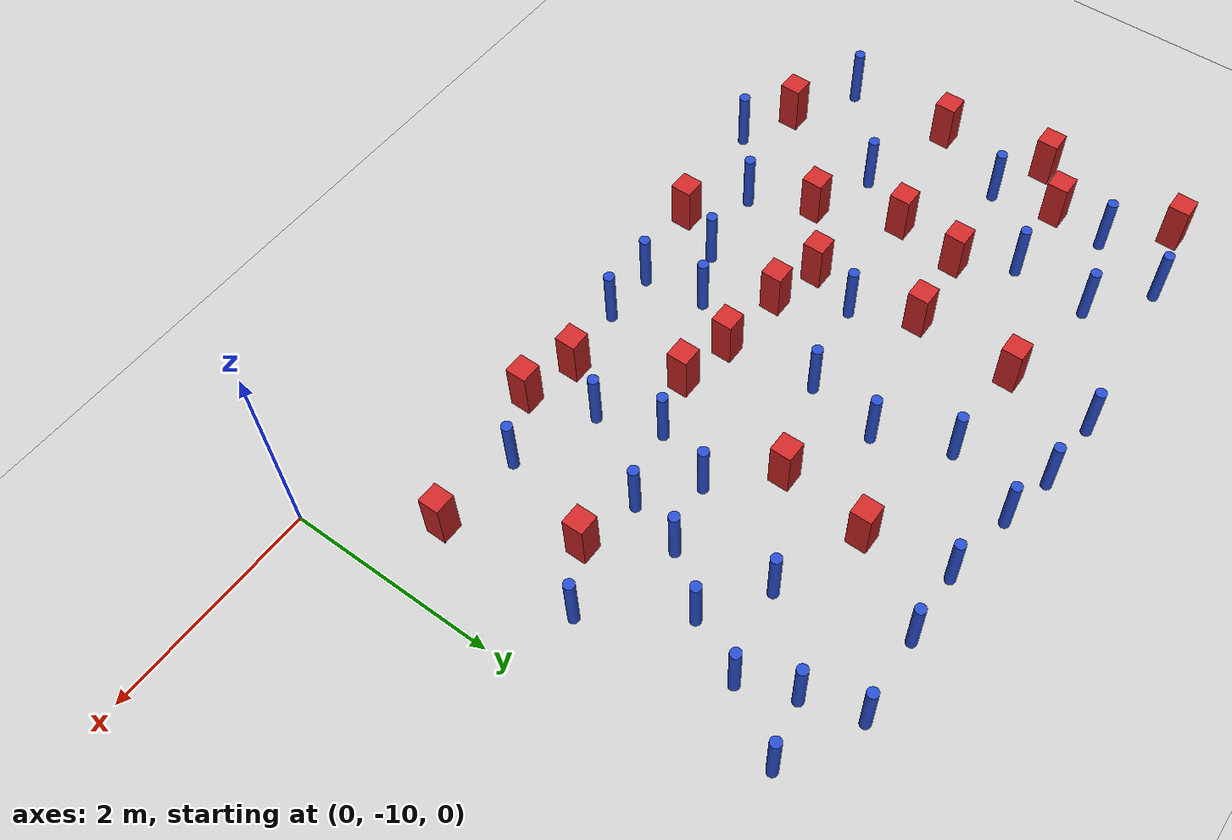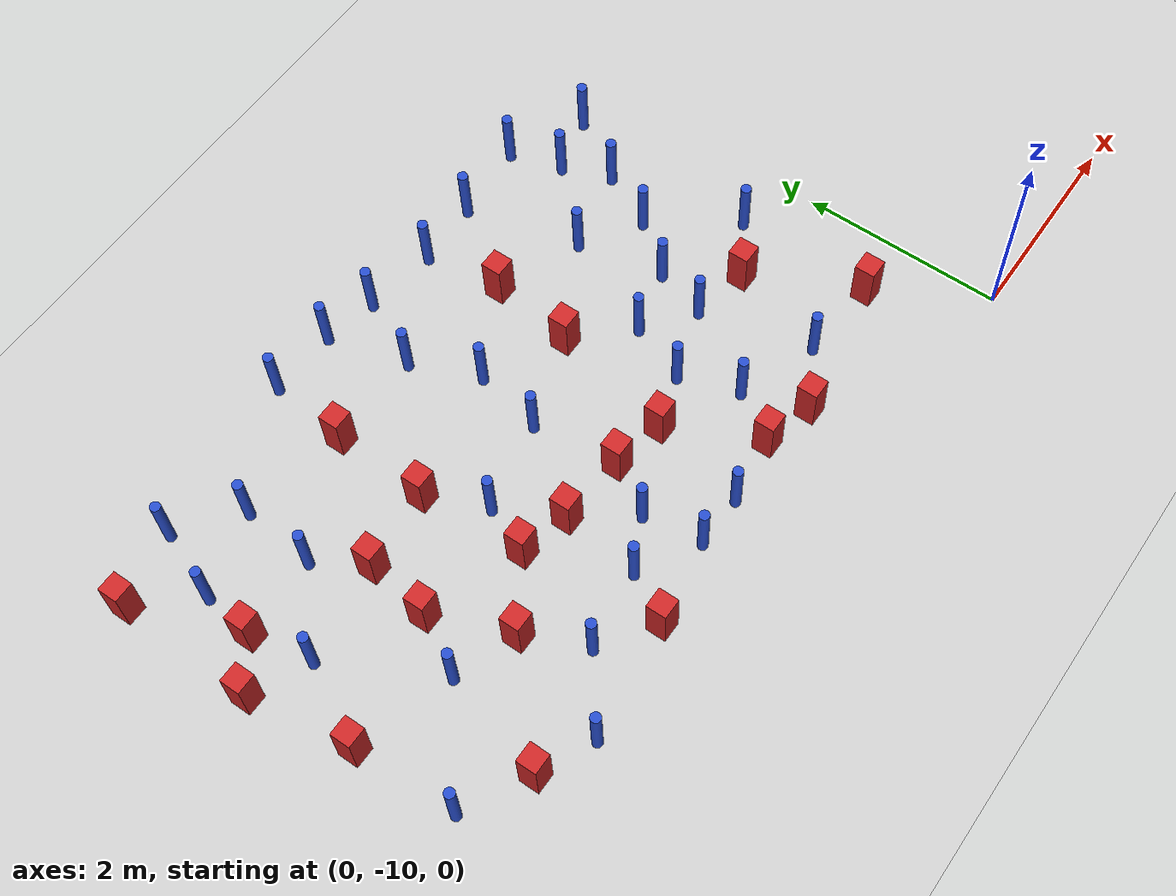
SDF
<sdf version="1.6">
 <world name="default">
  <model name="ground_plane">
   <static>1</static>
   <link name="link">
    <collision name="collision">
     <geometry><plane><normal>0 0 1</normal><size>100 100</size></plane></geometry>
     <surface><friction><ode><mu>100</mu><mu2>50</mu2></ode></friction></surface>
    </collision>
    <visual name="visual">
     <cast_shadows>0</cast_shadows>
     <geometry><plane><normal>0 0 1</normal><size>100 100</size></plane></geometry>
     <material>
      <ambient>1.0 1.0 1.0 1.0</ambient>
      <diffuse>0.8 0.8 0.8 1.0</diffuse>
      <specular>0.01 0.01 0.01 1.000000</specular>
     </material>
    </visual>
   </link>
  </model>
  <model name="square_post_obstacle12">
   <static>true</static>
   <pose>-6.54234163152 -6.48318330368 8.22691968438e-08 7.2212513382e-06 -7.54495500217e-07 2.29674213826e-05</pose>
   <link name="link">
    <pose>0 0 0.25 0 -0 0</pose>
    <inertial>
     <mass>100</mass>
     <inertia>
      <ixx>0.166667</ixx>
      <ixy>0</ixy>
      <ixz>0</ixz>
      <iyy>0.166667</iyy>
      <iyz>0</iyz>
      <izz>0.166667</izz>
     </inertia>
    </inertial>
    <collision name="collision"><geometry><box><size>.2 .2 .5</size></box></geometry></collision>
    <visual name="visual">
     <geometry><box><size>.2 .2 .5</size></box></geometry>
     <material>
      <script><name>Gazebo/Red</name><uri>file://media/materials/scripts/gazebo.material</uri></script>
     </material>
    </visual>
   </link>
  </model>
  <model name="pole_obstacle11">
   <static>true</static>
   <pose>-1.71149280971 -6.44326498525 2.88873142074e-08 -9.90536689852e-09 4.60219948989e-07 -1.2096599496e-07</pose>
   <link name="link">
    <pose>0 0 0.3 0 -0 0</pose>
    <inertial>
     <mass>1</mass>
     <inertia><ixx>0.145833</ixx><ixy>0</ixy><ixz>0</ixz><iyy>0.145833</iyy><iyz>0</iyz><izz>0.125</izz></inertia>
    </inertial>
    <collision name="collision">
     <geometry><cylinder><radius>0.05</radius><length>.6</length></cylinder></geometry>
    </collision>
    <visual name="visual">
     <geometry><cylinder><radius>0.05</radius><length>.6</length></cylinder></geometry>
     <material>
      <script><name>Gazebo/Blue</name><uri>file://media/materials/scripts/gazebo.material</uri></script>
     </material>
    </visual>
   </link>
  </model>
  <model name="square_post_obstacle21">
   <static>true</static>
   <pose>-2.50041429818 -9.08207789205 8.22691968438e-08 7.22125133819e-06 -7.54495500217e-07 2.29674213826e-05</pose>
   <link name="link">
    <pose>0 0 0.25 0 -0 0</pose>
    <inertial>
     <mass>100</mass>
     <inertia>
      <ixx>0.166667</ixx>
      <ixy>0</ixy>
      <ixz>0</ixz>
      <iyy>0.166667</iyy>
      <iyz>0</iyz>
      <izz>0.166667</izz>
     </inertia>
    </inertial>
    <collision name="collision"><geometry><box><size>.2 .2 .5</size></box></geometry></collision>
    <visual name="visual">
     <geometry><box><size>.2 .2 .5</size></box></geometry>
     <material>
      <script><name>Gazebo/Red</name><uri>file://media/materials/scripts/gazebo.material</uri></script>
     </material>
    </visual>
   </link>
  </model>
  <model name="pole_obstacle17">
   <static>true</static>
   <pose>-4.43029769642 -7.44711746223 2.88873142074e-08 -9.90536690842e-09 4.60219948965e-07 -1.20965994976e-07</pose>
   <link name="link">
    <pose>0 0 0.3 0 -0 0</pose>
    <inertial>
     <mass>1</mass>
     <inertia><ixx>0.145833</ixx><ixy>0</ixy><ixz>0</ixz><iyy>0.145833</iyy><iyz>0</iyz><izz>0.125</izz></inertia>
    </inertial>
    <collision name="collision">
     <geometry><cylinder><radius>0.05</radius><length>.6</length></cylinder></geometry>
    </collision>
    <visual name="visual">
     <geometry><cylinder><radius>0.05</radius><length>.6</length></cylinder></geometry>
     <material>
      <script><name>Gazebo/Blue</name><uri>file://media/materials/scripts/gazebo.material</uri></script>
     </material>
    </visual>
   </link>
  </model>
  <model name="pole_obstacle24">
   <static>true</static>
   <pose>-6.78461669548 -8.85125705796 2.88873142074e-08 -9.9053668967e-09 4.60219948993e-07 -1.20965994957e-07</pose>
   <link name="link">
    <pose>0 0 0.3 0 -0 0</pose>
    <inertial>
     <mass>1</mass>
     <inertia><ixx>0.145833</ixx><ixy>0</ixy><ixz>0</ixz><iyy>0.145833</iyy><iyz>0</iyz><izz>0.125</izz></inertia>
    </inertial>
    <collision name="collision">
     <geometry><cylinder><radius>0.05</radius><length>.6</length></cylinder></geometry>
    </collision>
    <visual name="visual">
     <geometry><cylinder><radius>0.05</radius><length>.6</length></cylinder></geometry>
     <material>
      <script><name>Gazebo/Blue</name><uri>file://media/materials/scripts/gazebo.material</uri></script>
     </material>
    </visual>
   </link>
  </model>
  <model name="pole_obstacle27">
   <static>true</static>
   <pose>-2.20261003958 -8.60993973966 2.88873142074e-08 -9.90536692318e-09 4.6021994893e-07 -1.20965994988e-07</pose>
   <link name="link">
    <pose>0 0 0.3 0 -0 0</pose>
    <inertial>
     <mass>1</mass>
     <inertia><ixx>0.145833</ixx><ixy>0</ixy><ixz>0</ixz><iyy>0.145833</iyy><iyz>0</iyz><izz>0.125</izz></inertia>
    </inertial>
    <collision name="collision">
     <geometry><cylinder><radius>0.05</radius><length>.6</length></cylinder></geometry>
    </collision>
    <visual name="visual">
     <geometry><cylinder><radius>0.05</radius><length>.6</length></cylinder></geometry>
     <material>
      <script><name>Gazebo/Blue</name><uri>file://media/materials/scripts/gazebo.material</uri></script>
     </material>
    </visual>
   </link>
  </model>
  <model name="square_post_obstacle32">
   <static>true</static>
   <pose>-2.92771861356 -8.20823176281 8.22691968438e-08 7.22125133819e-06 -7.54495500217e-07 2.29674213826e-05</pose>
   <link name="link">
    <pose>0 0 0.25 0 -0 0</pose>
    <inertial>
     <mass>100</mass>
     <inertia>
      <ixx>0.166667</ixx>
      <ixy>0</ixy>
      <ixz>0</ixz>
      <iyy>0.166667</iyy>
      <iyz>0</iyz>
      <izz>0.166667</izz>
     </inertia>
    </inertial>
    <collision name="collision"><geometry><box><size>.2 .2 .5</size></box></geometry></collision>
    <visual name="visual">
     <geometry><box><size>.2 .2 .5</size></box></geometry>
     <material>
      <script><name>Gazebo/Red</name><uri>file://media/materials/scripts/gazebo.material</uri></script>
     </material>
    </visual>
   </link>
  </model>
  <model name="pole_obstacle31">
   <static>true</static>
   <pose>-3.54929513582 -7.25771155566 2.88873142074e-08 -9.90536689859e-09 4.60219948989e-07 -1.20965994961e-07</pose>
   <link name="link">
    <pose>0 0 0.3 0 -0 0</pose>
    <inertial>
     <mass>1</mass>
     <inertia><ixx>0.145833</ixx><ixy>0</ixy><ixz>0</ixz><iyy>0.145833</iyy><iyz>0</iyz><izz>0.125</izz></inertia>
    </inertial>
    <collision name="collision">
     <geometry><cylinder><radius>0.05</radius><length>.6</length></cylinder></geometry>
    </collision>
    <visual name="visual">
     <geometry><cylinder><radius>0.05</radius><length>.6</length></cylinder></geometry>
     <material>
      <script><name>Gazebo/Blue</name><uri>file://media/materials/scripts/gazebo.material</uri></script>
     </material>
    </visual>
   </link>
  </model>
  <model name="pole_obstacle32">
   <static>true</static>
   <pose>-2.64332495579 -5.35607502169 2.88873142074e-08 -9.90536689859e-09 4.60219948989e-07 -1.20965994961e-07</pose>
   <link name="link">
    <pose>0 0 0.3 0 -0 0</pose>
    <inertial>
     <mass>1</mass>
     <inertia><ixx>0.145833</ixx><ixy>0</ixy><ixz>0</ixz><iyy>0.145833</iyy><iyz>0</iyz><izz>0.125</izz></inertia>
    </inertial>
    <collision name="collision">
     <geometry><cylinder><radius>0.05</radius><length>.6</length></cylinder></geometry>
    </collision>
    <visual name="visual">
     <geometry><cylinder><radius>0.05</radius><length>.6</length></cylinder></geometry>
     <material>
      <script><name>Gazebo/Blue</name><uri>file://media/materials/scripts/gazebo.material</uri></script>
     </material>
    </visual>
   </link>
  </model>
  <model name="pole_obstacle35">
   <static>true</static>
   <pose>-2.16761448942 -7.45671834868 2.88873142074e-08 -9.90536689859e-09 4.60219948989e-07 -1.20965994961e-07</pose>
   <link name="link">
    <pose>0 0 0.3 0 -0 0</pose>
    <inertial>
     <mass>1</mass>
     <inertia><ixx>0.145833</ixx><ixy>0</ixy><ixz>0</ixz><iyy>0.145833</iyy><iyz>0</iyz><izz>0.125</izz></inertia>
    </inertial>
    <collision name="collision">
     <geometry><cylinder><radius>0.05</radius><length>.6</length></cylinder></geometry>
    </collision>
    <visual name="visual">
     <geometry><cylinder><radius>0.05</radius><length>.6</length></cylinder></geometry>
     <material>
      <script><name>Gazebo/Blue</name><uri>file://media/materials/scripts/gazebo.material</uri></script>
     </material>
    </visual>
   </link>
  </model>
  <model name="square_post_obstacle39">
   <static>true</static>
   <pose>-6.82402341208 -7.84306021628 8.22691968438e-08 7.22125133819e-06 -7.54495500217e-07 2.29674213826e-05</pose>
   <link name="link">
    <pose>0 0 0.25 0 -0 0</pose>
    <inertial>
     <mass>100</mass>
     <inertia>
      <ixx>0.166667</ixx>
      <ixy>0</ixy>
      <ixz>0</ixz>
      <iyy>0.166667</iyy>
      <iyz>0</iyz>
      <izz>0.166667</izz>
     </inertia>
    </inertial>
    <collision name="collision"><geometry><box><size>.2 .2 .5</size></box></geometry></collision>
    <visual name="visual">
     <geometry><box><size>.2 .2 .5</size></box></geometry>
     <material>
      <script><name>Gazebo/Red</name><uri>file://media/materials/scripts/gazebo.material</uri></script>
     </material>
    </visual>
   </link>
  </model>
  <model name="pole_obstacle39">
   <static>true</static>
   <pose>-4.54872128641 -5.11156442108 2.88873142074e-08 -9.90536690842e-09 4.60219948965e-07 -1.20965994976e-07</pose>
   <link name="link">
    <pose>0 0 0.3 0 -0 0</pose>
    <inertial>
     <mass>1</mass>
     <inertia><ixx>0.145833</ixx><ixy>0</ixy><ixz>0</ixz><iyy>0.145833</iyy><iyz>0</iyz><izz>0.125</izz></inertia>
    </inertial>
    <collision name="collision">
     <geometry><cylinder><radius>0.05</radius><length>.6</length></cylinder></geometry>
    </collision>
    <visual name="visual">
     <geometry><cylinder><radius>0.05</radius><length>.6</length></cylinder></geometry>
     <material>
      <script><name>Gazebo/Blue</name><uri>file://media/materials/scripts/gazebo.material</uri></script>
     </material>
    </visual>
   </link>
  </model>
  <model name="square_post_obstacle40">
   <static>true</static>
   <pose>-4.48494366289 -9.29438645703 8.22691968438e-08 7.22125133819e-06 -7.54495500217e-07 2.29674213826e-05</pose>
   <link name="link">
    <pose>0 0 0.25 0 -0 0</pose>
    <inertial>
     <mass>100</mass>
     <inertia>
      <ixx>0.166667</ixx>
      <ixy>0</ixy>
      <ixz>0</ixz>
      <iyy>0.166667</iyy>
      <iyz>0</iyz>
      <izz>0.166667</izz>
     </inertia>
    </inertial>
    <collision name="collision"><geometry><box><size>.2 .2 .5</size></box></geometry></collision>
    <visual name="visual">
     <geometry><box><size>.2 .2 .5</size></box></geometry>
     <material>
      <script><name>Gazebo/Red</name><uri>file://media/materials/scripts/gazebo.material</uri></script>
     </material>
    </visual>
   </link>
  </model>
  <model name="pole_obstacle45">
   <static>true</static>
   <pose>-6.21672664421 -5.28379203276 2.88873142074e-08 -9.90536690842e-09 4.60219948965e-07 -1.20965994976e-07</pose>
   <link name="link">
    <pose>0 0 0.3 0 -0 0</pose>
    <inertial>
     <mass>1</mass>
     <inertia><ixx>0.145833</ixx><ixy>0</ixy><ixz>0</ixz><iyy>0.145833</iyy><iyz>0</iyz><izz>0.125</izz></inertia>
    </inertial>
    <collision name="collision">
     <geometry><cylinder><radius>0.05</radius><length>.6</length></cylinder></geometry>
    </collision>
    <visual name="visual">
     <geometry><cylinder><radius>0.05</radius><length>.6</length></cylinder></geometry>
     <material>
      <script><name>Gazebo/Blue</name><uri>file://media/materials/scripts/gazebo.material</uri></script>
     </material>
    </visual>
   </link>
  </model>
  <model name="pole_obstacle46">
   <static>true</static>
   <pose>-3.87610327983 -5.14061435724 2.88873142074e-08 -9.90536689859e-09 4.60219948989e-07 -1.20965994961e-07</pose>
   <link name="link">
    <pose>0 0 0.3 0 -0 0</pose>
    <inertial>
     <mass>1</mass>
     <inertia><ixx>0.145833</ixx><ixy>0</ixy><ixz>0</ixz><iyy>0.145833</iyy><iyz>0</iyz><izz>0.125</izz></inertia>
    </inertial>
    <collision name="collision">
     <geometry><cylinder><radius>0.05</radius><length>.6</length></cylinder></geometry>
    </collision>
    <visual name="visual">
     <geometry><cylinder><radius>0.05</radius><length>.6</length></cylinder></geometry>
     <material>
      <script><name>Gazebo/Blue</name><uri>file://media/materials/scripts/gazebo.material</uri></script>
     </material>
    </visual>
   </link>
  </model>
  <model name="square_post_obstacle50">
   <static>true</static>
   <pose>-6.9766743409 -6.82001009427 8.22691968438e-08 7.2212513382e-06 -7.54495500217e-07 2.29674213826e-05</pose>
   <link name="link">
    <pose>0 0 0.25 0 -0 0</pose>
    <inertial>
     <mass>100</mass>
     <inertia>
      <ixx>0.166667</ixx>
      <ixy>0</ixy>
      <ixz>0</ixz>
      <iyy>0.166667</iyy>
      <iyz>0</iyz>
      <izz>0.166667</izz>
     </inertia>
    </inertial>
    <collision name="collision"><geometry><box><size>.2 .2 .5</size></box></geometry></collision>
    <visual name="visual">
     <geometry><box><size>.2 .2 .5</size></box></geometry>
     <material>
      <script><name>Gazebo/Red</name><uri>file://media/materials/scripts/gazebo.material</uri></script>
     </material>
    </visual>
   </link>
  </model>
  <model name="square_post_obstacle54">
   <static>true</static>
   <pose>-4.63407331907 -5.91861780797 8.22691968438e-08 7.22125133819e-06 -7.54495500217e-07 2.29674213826e-05</pose>
   <link name="link">
    <pose>0 0 0.25 0 -0 0</pose>
    <inertial>
     <mass>100</mass>
     <inertia>
      <ixx>0.166667</ixx>
      <ixy>0</ixy>
      <ixz>0</ixz>
      <iyy>0.166667</iyy>
      <iyz>0</iyz>
      <izz>0.166667</izz>
     </inertia>
    </inertial>
    <collision name="collision"><geometry><box><size>.2 .2 .5</size></box></geometry></collision>
    <visual name="visual">
     <geometry><box><size>.2 .2 .5</size></box></geometry>
     <material>
      <script><name>Gazebo/Red</name><uri>file://media/materials/scripts/gazebo.material</uri></script>
     </material>
    </visual>
   </link>
  </model>
  <model name="pole_obstacle53">
   <static>true</static>
   <pose>-1.54786105304 -7.29624297944 2.88873142074e-08 -9.90536689852e-09 4.60219948989e-07 -1.2096599496e-07</pose>
   <link name="link">
    <pose>0 0 0.3 0 -0 0</pose>
    <inertial>
     <mass>1</mass>
     <inertia><ixx>0.145833</ixx><ixy>0</ixy><ixz>0</ixz><iyy>0.145833</iyy><iyz>0</iyz><izz>0.125</izz></inertia>
    </inertial>
    <collision name="collision">
     <geometry><cylinder><radius>0.05</radius><length>.6</length></cylinder></geometry>
    </collision>
    <visual name="visual">
     <geometry><cylinder><radius>0.05</radius><length>.6</length></cylinder></geometry>
     <material>
      <script><name>Gazebo/Blue</name><uri>file://media/materials/scripts/gazebo.material</uri></script>
     </material>
    </visual>
   </link>
  </model>
  <model name="square_post_obstacle61">
   <static>true</static>
   <pose>-3.45314343284 -8.11032036329 8.22691968438e-08 7.22125133819e-06 -7.54495500217e-07 2.29674213826e-05</pose>
   <link name="link">
    <pose>0 0 0.25 0 -0 0</pose>
    <inertial>
     <mass>100</mass>
     <inertia>
      <ixx>0.166667</ixx>
      <ixy>0</ixy>
      <ixz>0</ixz>
      <iyy>0.166667</iyy>
      <iyz>0</iyz>
      <izz>0.166667</izz>
     </inertia>
    </inertial>
    <collision name="collision"><geometry><box><size>.2 .2 .5</size></box></geometry></collision>
    <visual name="visual">
     <geometry><box><size>.2 .2 .5</size></box></geometry>
     <material>
      <script><name>Gazebo/Red</name><uri>file://media/materials/scripts/gazebo.material</uri></script>
     </material>
    </visual>
   </link>
  </model>
  <model name="pole_obstacle59">
   <static>true</static>
   <pose>-5.63632501256 -9.43485162715 2.88873142074e-08 -9.9053668967e-09 4.60219948993e-07 -1.20965994957e-07</pose>
   <link name="link">
    <pose>0 0 0.3 0 -0 0</pose>
    <inertial>
     <mass>1</mass>
     <inertia><ixx>0.145833</ixx><ixy>0</ixy><ixz>0</ixz><iyy>0.145833</iyy><iyz>0</iyz><izz>0.125</izz></inertia>
    </inertial>
    <collision name="collision">
     <geometry><cylinder><radius>0.05</radius><length>.6</length></cylinder></geometry>
    </collision>
    <visual name="visual">
     <geometry><cylinder><radius>0.05</radius><length>.6</length></cylinder></geometry>
     <material>
      <script><name>Gazebo/Blue</name><uri>file://media/materials/scripts/gazebo.material</uri></script>
     </material>
    </visual>
   </link>
  </model>
  <model name="pole_obstacle65">
   <static>true</static>
   <pose>-5.66418376491 -5.71986870633 2.88873142074e-08 -9.90536690842e-09 4.60219948965e-07 -1.20965994976e-07</pose>
   <link name="link">
    <pose>0 0 0.3 0 -0 0</pose>
    <inertial>
     <mass>1</mass>
     <inertia><ixx>0.145833</ixx><ixy>0</ixy><ixz>0</ixz><iyy>0.145833</iyy><iyz>0</iyz><izz>0.125</izz></inertia>
    </inertial>
    <collision name="collision">
     <geometry><cylinder><radius>0.05</radius><length>.6</length></cylinder></geometry>
    </collision>
    <visual name="visual">
     <geometry><cylinder><radius>0.05</radius><length>.6</length></cylinder></geometry>
     <material>
      <script><name>Gazebo/Blue</name><uri>file://media/materials/scripts/gazebo.material</uri></script>
     </material>
    </visual>
   </link>
  </model>
  <model name="square_post_obstacle76">
   <static>true</static>
   <pose>-6.16246753141 -9.19455436475 8.22691968438e-08 7.22125133819e-06 -7.54495500217e-07 2.29674213826e-05</pose>
   <link name="link">
    <pose>0 0 0.25 0 -0 0</pose>
    <inertial>
     <mass>100</mass>
     <inertia>
      <ixx>0.166667</ixx>
      <ixy>0</ixy>
      <ixz>0</ixz>
      <iyy>0.166667</iyy>
      <iyz>0</iyz>
      <izz>0.166667</izz>
     </inertia>
    </inertial>
    <collision name="collision"><geometry><box><size>.2 .2 .5</size></box></geometry></collision>
    <visual name="visual">
     <geometry><box><size>.2 .2 .5</size></box></geometry>
     <material>
      <script><name>Gazebo/Red</name><uri>file://media/materials/scripts/gazebo.material</uri></script>
     </material>
    </visual>
   </link>
  </model>
  <model name="pole_obstacle79">
   <static>true</static>
   <pose>-3.14485656601 -9.16529762449 2.88873142074e-08 -9.90536692318e-09 4.6021994893e-07 -1.20965994988e-07</pose>
   <link name="link">
    <pose>0 0 0.3 0 -0 0</pose>
    <inertial>
     <mass>1</mass>
     <inertia><ixx>0.145833</ixx><ixy>0</ixy><ixz>0</ixz><iyy>0.145833</iyy><iyz>0</iyz><izz>0.125</izz></inertia>
    </inertial>
    <collision name="collision">
     <geometry><cylinder><radius>0.05</radius><length>.6</length></cylinder></geometry>
    </collision>
    <visual name="visual">
     <geometry><cylinder><radius>0.05</radius><length>.6</length></cylinder></geometry>
     <material>
      <script><name>Gazebo/Blue</name><uri>file://media/materials/scripts/gazebo.material</uri></script>
     </material>
    </visual>
   </link>
  </model>
  <model name="pole_obstacle104">
   <static>true</static>
   <pose>-3.65628820962 -9.15833575908 2.88873142074e-08 -9.9053668994e-09 4.60219948987e-07 -1.20965994963e-07</pose>
   <link name="link">
    <pose>0 0 0.3 0 -0 0</pose>
    <inertial>
     <mass>1</mass>
     <inertia><ixx>0.145833</ixx><ixy>0</ixy><ixz>0</ixz><iyy>0.145833</iyy><iyz>0</iyz><izz>0.125</izz></inertia>
    </inertial>
    <collision name="collision">
     <geometry><cylinder><radius>0.05</radius><length>.6</length></cylinder></geometry>
    </collision>
    <visual name="visual">
     <geometry><cylinder><radius>0.05</radius><length>.6</length></cylinder></geometry>
     <material>
      <script><name>Gazebo/Blue</name><uri>file://media/materials/scripts/gazebo.material</uri></script>
     </material>
    </visual>
   </link>
  </model>
  <model name="square_post_obstacle92">
   <static>true</static>
   <pose>-2.54078903342 -6.12866605151 8.22691968438e-08 7.2212513382e-06 -7.54495500217e-07 2.29674213826e-05</pose>
   <link name="link">
    <pose>0 0 0.25 0 -0 0</pose>
    <inertial>
     <mass>100</mass>
     <inertia>
      <ixx>0.166667</ixx>
      <ixy>0</ixy>
      <ixz>0</ixz>
      <iyy>0.166667</iyy>
      <iyz>0</iyz>
      <izz>0.166667</izz>
     </inertia>
    </inertial>
    <collision name="collision"><geometry><box><size>.2 .2 .5</size></box></geometry></collision>
    <visual name="visual">
     <geometry><box><size>.2 .2 .5</size></box></geometry>
     <material>
      <script><name>Gazebo/Red</name><uri>file://media/materials/scripts/gazebo.material</uri></script>
     </material>
    </visual>
   </link>
  </model>
  <model name="pole_obstacle107">
   <static>true</static>
   <pose>-3.40589468066 -6.58210970235 2.88873142074e-08 -9.90536689859e-09 4.60219948989e-07 -1.20965994961e-07</pose>
   <link name="link">
    <pose>0 0 0.3 0 -0 0</pose>
    <inertial>
     <mass>1</mass>
     <inertia><ixx>0.145833</ixx><ixy>0</ixy><ixz>0</ixz><iyy>0.145833</iyy><iyz>0</iyz><izz>0.125</izz></inertia>
    </inertial>
    <collision name="collision">
     <geometry><cylinder><radius>0.05</radius><length>.6</length></cylinder></geometry>
    </collision>
    <visual name="visual">
     <geometry><cylinder><radius>0.05</radius><length>.6</length></cylinder></geometry>
     <material>
      <script><name>Gazebo/Blue</name><uri>file://media/materials/scripts/gazebo.material</uri></script>
     </material>
    </visual>
   </link>
  </model>
  <model name="square_post_obstacle96">
   <static>true</static>
   <pose>-5.45955927406 -6.95230581535 8.22691968438e-08 7.22125133819e-06 -7.54495500217e-07 2.29674213826e-05</pose>
   <link name="link">
    <pose>0 0 0.25 0 -0 0</pose>
    <inertial>
     <mass>100</mass>
     <inertia>
      <ixx>0.166667</ixx>
      <ixy>0</ixy>
      <ixz>0</ixz>
      <iyy>0.166667</iyy>
      <iyz>0</iyz>
      <izz>0.166667</izz>
     </inertia>
    </inertial>
    <collision name="collision"><geometry><box><size>.2 .2 .5</size></box></geometry></collision>
    <visual name="visual">
     <geometry><box><size>.2 .2 .5</size></box></geometry>
     <material>
      <script><name>Gazebo/Red</name><uri>file://media/materials/scripts/gazebo.material</uri></script>
     </material>
    </visual>
   </link>
  </model>
  <model name="square_post_obstacle98">
   <static>true</static>
   <pose>-5.26355370903 -8.35688550272 8.22691968438e-08 7.22125133819e-06 -7.54495500217e-07 2.29674213826e-05</pose>
   <link name="link">
    <pose>0 0 0.25 0 -0 0</pose>
    <inertial>
     <mass>100</mass>
     <inertia>
      <ixx>0.166667</ixx>
      <ixy>0</ixy>
      <ixz>0</ixz>
      <iyy>0.166667</iyy>
      <iyz>0</iyz>
      <izz>0.166667</izz>
     </inertia>
    </inertial>
    <collision name="collision"><geometry><box><size>.2 .2 .5</size></box></geometry></collision>
    <visual name="visual">
     <geometry><box><size>.2 .2 .5</size></box></geometry>
     <material>
      <script><name>Gazebo/Red</name><uri>file://media/materials/scripts/gazebo.material</uri></script>
     </material>
    </visual>
   </link>
  </model>
  <model name="pole_obstacle111">
   <static>true</static>
   <pose>-5.87239887462 -8.12727913785 2.88873142074e-08 -9.9053668967e-09 4.60219948993e-07 -1.20965994957e-07</pose>
   <link name="link">
    <pose>0 0 0.3 0 -0 0</pose>
    <inertial>
     <mass>1</mass>
     <inertia><ixx>0.145833</ixx><ixy>0</ixy><ixz>0</ixz><iyy>0.145833</iyy><iyz>0</iyz><izz>0.125</izz></inertia>
    </inertial>
    <collision name="collision">
     <geometry><cylinder><radius>0.05</radius><length>.6</length></cylinder></geometry>
    </collision>
    <visual name="visual">
     <geometry><cylinder><radius>0.05</radius><length>.6</length></cylinder></geometry>
     <material>
      <script><name>Gazebo/Blue</name><uri>file://media/materials/scripts/gazebo.material</uri></script>
     </material>
    </visual>
   </link>
  </model>
  <model name="square_post_obstacle102">
   <static>true</static>
   <pose>-4.13327046691 -8.05274304479 8.22691968438e-08 7.22125133819e-06 -7.54495500217e-07 2.29674213826e-05</pose>
   <link name="link">
    <pose>0 0 0.25 0 -0 0</pose>
    <inertial>
     <mass>100</mass>
     <inertia>
      <ixx>0.166667</ixx>
      <ixy>0</ixy>
      <ixz>0</ixz>
      <iyy>0.166667</iyy>
      <iyz>0</iyz>
      <izz>0.166667</izz>
     </inertia>
    </inertial>
    <collision name="collision"><geometry><box><size>.2 .2 .5</size></box></geometry></collision>
    <visual name="visual">
     <geometry><box><size>.2 .2 .5</size></box></geometry>
     <material>
      <script><name>Gazebo/Red</name><uri>file://media/materials/scripts/gazebo.material</uri></script>
     </material>
    </visual>
   </link>
  </model>
  <model name="pole_obstacle128">
   <static>true</static>
   <pose>-1.2171803488 -5.26958344321 2.88873142074e-08 -9.90536689852e-09 4.60219948989e-07 -1.2096599496e-07</pose>
   <link name="link">
    <pose>0 0 0.3 0 -0 0</pose>
    <inertial>
     <mass>1</mass>
     <inertia><ixx>0.145833</ixx><ixy>0</ixy><ixz>0</ixz><iyy>0.145833</iyy><iyz>0</iyz><izz>0.125</izz></inertia>
    </inertial>
    <collision name="collision">
     <geometry><cylinder><radius>0.05</radius><length>.6</length></cylinder></geometry>
    </collision>
    <visual name="visual">
     <geometry><cylinder><radius>0.05</radius><length>.6</length></cylinder></geometry>
     <material>
      <script><name>Gazebo/Blue</name><uri>file://media/materials/scripts/gazebo.material</uri></script>
     </material>
    </visual>
   </link>
  </model>
  <model name="pole_obstacle132">
   <static>true</static>
   <pose>-1.06864184512 -5.78237142198 2.88873142074e-08 -9.90536689852e-09 4.60219948989e-07 -1.2096599496e-07</pose>
   <link name="link">
    <pose>0 0 0.3 0 -0 0</pose>
    <inertial>
     <mass>1</mass>
     <inertia><ixx>0.145833</ixx><ixy>0</ixy><ixz>0</ixz><iyy>0.145833</iyy><iyz>0</iyz><izz>0.125</izz></inertia>
    </inertial>
    <collision name="collision">
     <geometry><cylinder><radius>0.05</radius><length>.6</length></cylinder></geometry>
    </collision>
    <visual name="visual">
     <geometry><cylinder><radius>0.05</radius><length>.6</length></cylinder></geometry>
     <material>
      <script><name>Gazebo/Blue</name><uri>file://media/materials/scripts/gazebo.material</uri></script>
     </material>
    </visual>
   </link>
  </model>
  <model name="square_post_obstacle118">
   <static>true</static>
   <pose>-4.68272961928 -6.87347469106 8.22691968438e-08 7.2212513382e-06 -7.54495500217e-07 2.29674213826e-05</pose>
   <link name="link">
    <pose>0 0 0.25 0 -0 0</pose>
    <inertial>
     <mass>100</mass>
     <inertia>
      <ixx>0.166667</ixx>
      <ixy>0</ixy>
      <ixz>0</ixz>
      <iyy>0.166667</iyy>
      <iyz>0</iyz>
      <izz>0.166667</izz>
     </inertia>
    </inertial>
    <collision name="collision"><geometry><box><size>.2 .2 .5</size></box></geometry></collision>
    <visual name="visual">
     <geometry><box><size>.2 .2 .5</size></box></geometry>
     <material>
      <script><name>Gazebo/Red</name><uri>file://media/materials/scripts/gazebo.material</uri></script>
     </material>
    </visual>
   </link>
  </model>
  <model name="square_post_obstacle120">
   <static>true</static>
   <pose>-1.13800241491 -7.92329620913 8.22691968438e-08 7.2212513382e-06 -7.54495500217e-07 2.29674213826e-05</pose>
   <link name="link">
    <pose>0 0 0.25 0 -0 0</pose>
    <inertial>
     <mass>100</mass>
     <inertia>
      <ixx>0.166667</ixx>
      <ixy>0</ixy>
      <ixz>0</ixz>
      <iyy>0.166667</iyy>
      <iyz>0</iyz>
      <izz>0.166667</izz>
     </inertia>
    </inertial>
    <collision name="collision"><geometry><box><size>.2 .2 .5</size></box></geometry></collision>
    <visual name="visual">
     <geometry><box><size>.2 .2 .5</size></box></geometry>
     <material>
      <script><name>Gazebo/Red</name><uri>file://media/materials/scripts/gazebo.material</uri></script>
     </material>
    </visual>
   </link>
  </model>
  <model name="pole_obstacle139">
   <static>true</static>
   <pose>-0.497465527601 -5.63603436309 2.88873142074e-08 -9.90536689758e-09 4.60219948991e-07 -1.20965994957e-07</pose>
   <link name="link">
    <pose>0 0 0.3 0 -0 0</pose>
    <inertial>
     <mass>1</mass>
     <inertia><ixx>0.145833</ixx><ixy>0</ixy><ixz>0</ixz><iyy>0.145833</iyy><iyz>0</iyz><izz>0.125</izz></inertia>
    </inertial>
    <collision name="collision">
     <geometry><cylinder><radius>0.05</radius><length>.6</length></cylinder></geometry>
    </collision>
    <visual name="visual">
     <geometry><cylinder><radius>0.05</radius><length>.6</length></cylinder></geometry>
     <material>
      <script><name>Gazebo/Blue</name><uri>file://media/materials/scripts/gazebo.material</uri></script>
     </material>
    </visual>
   </link>
  </model>
  <model name="square_post_obstacle138">
   <static>true</static>
   <pose>-5.56598584068 -7.59242991901 8.22691968438e-08 7.22125133819e-06 -7.54495500217e-07 2.29674213826e-05</pose>
   <link name="link">
    <pose>0 0 0.25 0 -0 0</pose>
    <inertial>
     <mass>100</mass>
     <inertia>
      <ixx>0.166667</ixx>
      <ixy>0</ixy>
      <ixz>0</ixz>
      <iyy>0.166667</iyy>
      <iyz>0</iyz>
      <izz>0.166667</izz>
     </inertia>
    </inertial>
    <collision name="collision"><geometry><box><size>.2 .2 .5</size></box></geometry></collision>
    <visual name="visual">
     <geometry><box><size>.2 .2 .5</size></box></geometry>
     <material>
      <script><name>Gazebo/Red</name><uri>file://media/materials/scripts/gazebo.material</uri></script>
     </material>
    </visual>
   </link>
  </model>
  <model name="pole_obstacle149">
   <static>true</static>
   <pose>-1.99207195513 -5.32788761831 2.88873142074e-08 -9.90536689721e-09 4.60219948992e-07 -1.20965994958e-07</pose>
   <link name="link">
    <pose>0 0 0.3 0 -0 0</pose>
    <inertial>
     <mass>1</mass>
     <inertia><ixx>0.145833</ixx><ixy>0</ixy><ixz>0</ixz><iyy>0.145833</iyy><iyz>0</iyz><izz>0.125</izz></inertia>
    </inertial>
    <collision name="collision">
     <geometry><cylinder><radius>0.05</radius><length>.6</length></cylinder></geometry>
    </collision>
    <visual name="visual">
     <geometry><cylinder><radius>0.05</radius><length>.6</length></cylinder></geometry>
     <material>
      <script><name>Gazebo/Blue</name><uri>file://media/materials/scripts/gazebo.material</uri></script>
     </material>
    </visual>
   </link>
  </model>
  <model name="pole_obstacle151">
   <static>true</static>
   <pose>-1.42972059044 -8.89858362574 2.88873142074e-08 -9.90536690474e-09 4.60219948974e-07 -1.2096599497e-07</pose>
   <link name="link">
    <pose>0 0 0.3 0 -0 0</pose>
    <inertial>
     <mass>1</mass>
     <inertia><ixx>0.145833</ixx><ixy>0</ixy><ixz>0</ixz><iyy>0.145833</iyy><iyz>0</iyz><izz>0.125</izz></inertia>
    </inertial>
    <collision name="collision">
     <geometry><cylinder><radius>0.05</radius><length>.6</length></cylinder></geometry>
    </collision>
    <visual name="visual">
     <geometry><cylinder><radius>0.05</radius><length>.6</length></cylinder></geometry>
     <material>
      <script><name>Gazebo/Blue</name><uri>file://media/materials/scripts/gazebo.material</uri></script>
     </material>
    </visual>
   </link>
  </model>
  <model name="pole_obstacle154">
   <static>true</static>
   <pose>-0.888896333264 -6.25416585446 2.88873142074e-08 -9.90536689661e-09 4.60219948993e-07 -1.20965994957e-07</pose>
   <link name="link">
    <pose>0 0 0.3 0 -0 0</pose>
    <inertial>
     <mass>1</mass>
     <inertia><ixx>0.145833</ixx><ixy>0</ixy><ixz>0</ixz><iyy>0.145833</iyy><iyz>0</iyz><izz>0.125</izz></inertia>
    </inertial>
    <collision name="collision">
     <geometry><cylinder><radius>0.05</radius><length>.6</length></cylinder></geometry>
    </collision>
    <visual name="visual">
     <geometry><cylinder><radius>0.05</radius><length>.6</length></cylinder></geometry>
     <material>
      <script><name>Gazebo/Blue</name><uri>file://media/materials/scripts/gazebo.material</uri></script>
     </material>
    </visual>
   </link>
  </model>
  <model name="pole_obstacle164">
   <static>true</static>
   <pose>-1.69792039172 -7.8091564161 2.88873142074e-08 -9.90536689852e-09 4.60219948989e-07 -1.2096599496e-07</pose>
   <link name="link">
    <pose>0 0 0.3 0 -0 0</pose>
    <inertial>
     <mass>1</mass>
     <inertia><ixx>0.145833</ixx><ixy>0</ixy><ixz>0</ixz><iyy>0.145833</iyy><iyz>0</iyz><izz>0.125</izz></inertia>
    </inertial>
    <collision name="collision">
     <geometry><cylinder><radius>0.05</radius><length>.6</length></cylinder></geometry>
    </collision>
    <visual name="visual">
     <geometry><cylinder><radius>0.05</radius><length>.6</length></cylinder></geometry>
     <material>
      <script><name>Gazebo/Blue</name><uri>file://media/materials/scripts/gazebo.material</uri></script>
     </material>
    </visual>
   </link>
  </model>
  <model name="pole_obstacle166">
   <static>true</static>
   <pose>-3.35183591759 -5.24943112029 2.88873142074e-08 -9.90536689859e-09 4.60219948989e-07 -1.20965994961e-07</pose>
   <link name="link">
    <pose>0 0 0.3 0 -0 0</pose>
    <inertial>
     <mass>1</mass>
     <inertia><ixx>0.145833</ixx><ixy>0</ixy><ixz>0</ixz><iyy>0.145833</iyy><iyz>0</iyz><izz>0.125</izz></inertia>
    </inertial>
    <collision name="collision">
     <geometry><cylinder><radius>0.05</radius><length>.6</length></cylinder></geometry>
    </collision>
    <visual name="visual">
     <geometry><cylinder><radius>0.05</radius><length>.6</length></cylinder></geometry>
     <material>
      <script><name>Gazebo/Blue</name><uri>file://media/materials/scripts/gazebo.material</uri></script>
     </material>
    </visual>
   </link>
  </model>
  <model name="pole_obstacle167">
   <static>true</static>
   <pose>-4.22971615664 -8.82957905479 2.88873142074e-08 -9.9053668967e-09 4.60219948993e-07 -1.20965994957e-07</pose>
   <link name="link">
    <pose>0 0 0.3 0 -0 0</pose>
    <inertial>
     <mass>1</mass>
     <inertia><ixx>0.145833</ixx><ixy>0</ixy><ixz>0</ixz><iyy>0.145833</iyy><iyz>0</iyz><izz>0.125</izz></inertia>
    </inertial>
    <collision name="collision">
     <geometry><cylinder><radius>0.05</radius><length>.6</length></cylinder></geometry>
    </collision>
    <visual name="visual">
     <geometry><cylinder><radius>0.05</radius><length>.6</length></cylinder></geometry>
     <material>
      <script><name>Gazebo/Blue</name><uri>file://media/materials/scripts/gazebo.material</uri></script>
     </material>
    </visual>
   </link>
  </model>
  <model name="pole_obstacle170">
   <static>true</static>
   <pose>-6.47914463335 -5.96207187109 2.88873142074e-08 -9.90536690842e-09 4.60219948965e-07 -1.20965994976e-07</pose>
   <link name="link">
    <pose>0 0 0.3 0 -0 0</pose>
    <inertial>
     <mass>1</mass>
     <inertia><ixx>0.145833</ixx><ixy>0</ixy><ixz>0</ixz><iyy>0.145833</iyy><iyz>0</iyz><izz>0.125</izz></inertia>
    </inertial>
    <collision name="collision">
     <geometry><cylinder><radius>0.05</radius><length>.6</length></cylinder></geometry>
    </collision>
    <visual name="visual">
     <geometry><cylinder><radius>0.05</radius><length>.6</length></cylinder></geometry>
     <material>
      <script><name>Gazebo/Blue</name><uri>file://media/materials/scripts/gazebo.material</uri></script>
     </material>
    </visual>
   </link>
  </model>
  <model name="pole_obstacle181">
   <static>true</static>
   <pose>-0.610609693325 -7.60298244722 2.88873142074e-08 -9.90536689661e-09 4.60219948993e-07 -1.20965994957e-07</pose>
   <link name="link">
    <pose>0 0 0.3 0 -0 0</pose>
    <inertial>
     <mass>1</mass>
     <inertia><ixx>0.145833</ixx><ixy>0</ixy><ixz>0</ixz><iyy>0.145833</iyy><iyz>0</iyz><izz>0.125</izz></inertia>
    </inertial>
    <collision name="collision">
     <geometry><cylinder><radius>0.05</radius><length>.6</length></cylinder></geometry>
    </collision>
    <visual name="visual">
     <geometry><cylinder><radius>0.05</radius><length>.6</length></cylinder></geometry>
     <material>
      <script><name>Gazebo/Blue</name><uri>file://media/materials/scripts/gazebo.material</uri></script>
     </material>
    </visual>
   </link>
  </model>
  <model name="pole_obstacle182">
   <static>true</static>
   <pose>-3.6764188549 -5.92348032031 2.88873142074e-08 -9.90536689859e-09 4.60219948989e-07 -1.20965994961e-07</pose>
   <link name="link">
    <pose>0 0 0.3 0 -0 0</pose>
    <inertial>
     <mass>1</mass>
     <inertia><ixx>0.145833</ixx><ixy>0</ixy><ixz>0</ixz><iyy>0.145833</iyy><iyz>0</iyz><izz>0.125</izz></inertia>
    </inertial>
    <collision name="collision">
     <geometry><cylinder><radius>0.05</radius><length>.6</length></cylinder></geometry>
    </collision>
    <visual name="visual">
     <geometry><cylinder><radius>0.05</radius><length>.6</length></cylinder></geometry>
     <material>
      <script><name>Gazebo/Blue</name><uri>file://media/materials/scripts/gazebo.material</uri></script>
     </material>
    </visual>
   </link>
  </model>
  <model name="square_post_obstacle176">
   <static>true</static>
   <pose>-4.6186545898 -7.92555626885 8.22691968438e-08 7.2212513382e-06 -7.54495500217e-07 2.29674213826e-05</pose>
   <link name="link">
    <pose>0 0 0.25 0 -0 0</pose>
    <inertial>
     <mass>100</mass>
     <inertia>
      <ixx>0.166667</ixx>
      <ixy>0</ixy>
      <ixz>0</ixz>
      <iyy>0.166667</iyy>
      <iyz>0</iyz>
      <izz>0.166667</izz>
     </inertia>
    </inertial>
    <collision name="collision"><geometry><box><size>.2 .2 .5</size></box></geometry></collision>
    <visual name="visual">
     <geometry><box><size>.2 .2 .5</size></box></geometry>
     <material>
      <script><name>Gazebo/Red</name><uri>file://media/materials/scripts/gazebo.material</uri></script>
     </material>
    </visual>
   </link>
  </model>
  <model name="square_post_obstacle186">
   <static>true</static>
   <pose>-2.65598623325 -6.96663195961 8.22691968438e-08 7.2212513382e-06 -7.54495500217e-07 2.29674213826e-05</pose>
   <link name="link">
    <pose>0 0 0.25 0 -0 0</pose>
    <inertial>
     <mass>100</mass>
     <inertia>
      <ixx>0.166667</ixx>
      <ixy>0</ixy>
      <ixz>0</ixz>
      <iyy>0.166667</iyy>
      <iyz>0</iyz>
      <izz>0.166667</izz>
     </inertia>
    </inertial>
    <collision name="collision"><geometry><box><size>.2 .2 .5</size></box></geometry></collision>
    <visual name="visual">
     <geometry><box><size>.2 .2 .5</size></box></geometry>
     <material>
      <script><name>Gazebo/Red</name><uri>file://media/materials/scripts/gazebo.material</uri></script>
     </material>
    </visual>
   </link>
  </model>
  <model name="square_post_obstacle188">
   <static>true</static>
   <pose>-6.9385055603 -5.45355180541 8.22691968438e-08 7.22125133819e-06 -7.54495500217e-07 2.29674213826e-05</pose>
   <link name="link">
    <pose>0 0 0.25 0 -0 0</pose>
    <inertial>
     <mass>100</mass>
     <inertia>
      <ixx>0.166667</ixx>
      <ixy>0</ixy>
      <ixz>0</ixz>
      <iyy>0.166667</iyy>
      <iyz>0</iyz>
      <izz>0.166667</izz>
     </inertia>
    </inertial>
    <collision name="collision"><geometry><box><size>.2 .2 .5</size></box></geometry></collision>
    <visual name="visual">
     <geometry><box><size>.2 .2 .5</size></box></geometry>
     <material>
      <script><name>Gazebo/Red</name><uri>file://media/materials/scripts/gazebo.material</uri></script>
     </material>
    </visual>
   </link>
  </model>
  <model name="square_post_obstacle199">
   <static>true</static>
   <pose>-1.99961944012 -9.2121920868 8.22691968438e-08 7.22125133819e-06 -7.54495500217e-07 2.29674213826e-05</pose>
   <link name="link">
    <pose>0 0 0.25 0 -0 0</pose>
    <inertial>
     <mass>100</mass>
     <inertia>
      <ixx>0.166667</ixx>
      <ixy>0</ixy>
      <ixz>0</ixz>
      <iyy>0.166667</iyy>
      <iyz>0</iyz>
      <izz>0.166667</izz>
     </inertia>
    </inertial>
    <collision name="collision"><geometry><box><size>.2 .2 .5</size></box></geometry></collision>
    <visual name="visual">
     <geometry><box><size>.2 .2 .5</size></box></geometry>
     <material>
      <script><name>Gazebo/Red</name><uri>file://media/materials/scripts/gazebo.material</uri></script>
     </material>
    </visual>
   </link>
  </model>
  <model name="pole_obstacle196">
   <static>true</static>
   <pose>-6.42440552551 -7.07164603876 2.88873142074e-08 -9.90536690842e-09 4.60219948965e-07 -1.20965994976e-07</pose>
   <link name="link">
    <pose>0 0 0.3 0 -0 0</pose>
    <inertial>
     <mass>1</mass>
     <inertia><ixx>0.145833</ixx><ixy>0</ixy><ixz>0</ixz><iyy>0.145833</iyy><iyz>0</iyz><izz>0.125</izz></inertia>
    </inertial>
    <collision name="collision">
     <geometry><cylinder><radius>0.05</radius><length>.6</length></cylinder></geometry>
    </collision>
    <visual name="visual">
     <geometry><cylinder><radius>0.05</radius><length>.6</length></cylinder></geometry>
     <material>
      <script><name>Gazebo/Blue</name><uri>file://media/materials/scripts/gazebo.material</uri></script>
     </material>
    </visual>
   </link>
  </model>
  <model name="pole_obstacle199">
   <static>true</static>
   <pose>-2.39568682427 -8.03585225441 2.88873142074e-08 -9.90536691401e-09 4.60219948952e-07 -1.20965994985e-07</pose>
   <link name="link">
    <pose>0 0 0.3 0 -0 0</pose>
    <inertial>
     <mass>1</mass>
     <inertia><ixx>0.145833</ixx><ixy>0</ixy><ixz>0</ixz><iyy>0.145833</iyy><iyz>0</iyz><izz>0.125</izz></inertia>
    </inertial>
    <collision name="collision">
     <geometry><cylinder><radius>0.05</radius><length>.6</length></cylinder></geometry>
    </collision>
    <visual name="visual">
     <geometry><cylinder><radius>0.05</radius><length>.6</length></cylinder></geometry>
     <material>
      <script><name>Gazebo/Blue</name><uri>file://media/materials/scripts/gazebo.material</uri></script>
     </material>
    </visual>
   </link>
  </model>
  <model name="pole_obstacle208">
   <static>true</static>
   <pose>-3.73824591114 -8.57579165487 2.88873142074e-08 -9.90536692318e-09 4.6021994893e-07 -1.20965994988e-07</pose>
   <link name="link">
    <pose>0 0 0.3 0 -0 0</pose>
    <inertial>
     <mass>1</mass>
     <inertia><ixx>0.145833</ixx><ixy>0</ixy><ixz>0</ixz><iyy>0.145833</iyy><iyz>0</iyz><izz>0.125</izz></inertia>
    </inertial>
    <collision name="collision">
     <geometry><cylinder><radius>0.05</radius><length>.6</length></cylinder></geometry>
    </collision>
    <visual name="visual">
     <geometry><cylinder><radius>0.05</radius><length>.6</length></cylinder></geometry>
     <material>
      <script><name>Gazebo/Blue</name><uri>file://media/materials/scripts/gazebo.material</uri></script>
     </material>
    </visual>
   </link>
  </model>
  <model name="pole_obstacle219">
   <static>true</static>
   <pose>-4.99855816403 -8.93832789332 2.88873142074e-08 -9.9053668967e-09 4.60219948993e-07 -1.20965994957e-07</pose>
   <link name="link">
    <pose>0 0 0.3 0 -0 0</pose>
    <inertial>
     <mass>1</mass>
     <inertia><ixx>0.145833</ixx><ixy>0</ixy><ixz>0</ixz><iyy>0.145833</iyy><iyz>0</iyz><izz>0.125</izz></inertia>
    </inertial>
    <collision name="collision">
     <geometry><cylinder><radius>0.05</radius><length>.6</length></cylinder></geometry>
    </collision>
    <visual name="visual">
     <geometry><cylinder><radius>0.05</radius><length>.6</length></cylinder></geometry>
     <material>
      <script><name>Gazebo/Blue</name><uri>file://media/materials/scripts/gazebo.material</uri></script>
     </material>
    </visual>
   </link>
  </model>
  <model name="pole_obstacle224">
   <static>true</static>
   <pose>-1.15738771996 -6.80899252856 2.88873142074e-08 -9.90536689852e-09 4.60219948989e-07 -1.2096599496e-07</pose>
   <link name="link">
    <pose>0 0 0.3 0 -0 0</pose>
    <inertial>
     <mass>1</mass>
     <inertia><ixx>0.145833</ixx><ixy>0</ixy><ixz>0</ixz><iyy>0.145833</iyy><iyz>0</iyz><izz>0.125</izz></inertia>
    </inertial>
    <collision name="collision">
     <geometry><cylinder><radius>0.05</radius><length>.6</length></cylinder></geometry>
    </collision>
    <visual name="visual">
     <geometry><cylinder><radius>0.05</radius><length>.6</length></cylinder></geometry>
     <material>
      <script><name>Gazebo/Blue</name><uri>file://media/materials/scripts/gazebo.material</uri></script>
     </material>
    </visual>
   </link>
  </model>
  <model name="pole_obstacle226">
   <static>true</static>
   <pose>-5.73923221933 -6.4490187464 2.88873142074e-08 -9.90536690842e-09 4.60219948965e-07 -1.20965994976e-07</pose>
   <link name="link">
    <pose>0 0 0.3 0 -0 0</pose>
    <inertial>
     <mass>1</mass>
     <inertia><ixx>0.145833</ixx><ixy>0</ixy><ixz>0</ixz><iyy>0.145833</iyy><iyz>0</iyz><izz>0.125</izz></inertia>
    </inertial>
    <collision name="collision">
     <geometry><cylinder><radius>0.05</radius><length>.6</length></cylinder></geometry>
    </collision>
    <visual name="visual">
     <geometry><cylinder><radius>0.05</radius><length>.6</length></cylinder></geometry>
     <material>
      <script><name>Gazebo/Blue</name><uri>file://media/materials/scripts/gazebo.material</uri></script>
     </material>
    </visual>
   </link>
  </model>
  <model name="square_post_obstacle213">
   <static>true</static>
   <pose>-0.621666826256 -8.97115079839 8.22691968438e-08 7.22125133819e-06 -7.54495500217e-07 2.29674213826e-05</pose>
   <link name="link">
    <pose>0 0 0.25 0 -0 0</pose>
    <inertial>
     <mass>100</mass>
     <inertia>
      <ixx>0.166667</ixx>
      <ixy>0</ixy>
      <ixz>0</ixz>
      <iyy>0.166667</iyy>
      <iyz>0</iyz>
      <izz>0.166667</izz>
     </inertia>
    </inertial>
    <collision name="collision"><geometry><box><size>.2 .2 .5</size></box></geometry></collision>
    <visual name="visual">
     <geometry><box><size>.2 .2 .5</size></box></geometry>
     <material>
      <script><name>Gazebo/Red</name><uri>file://media/materials/scripts/gazebo.material</uri></script>
     </material>
    </visual>
   </link>
  </model>
 </world>
</sdf>
